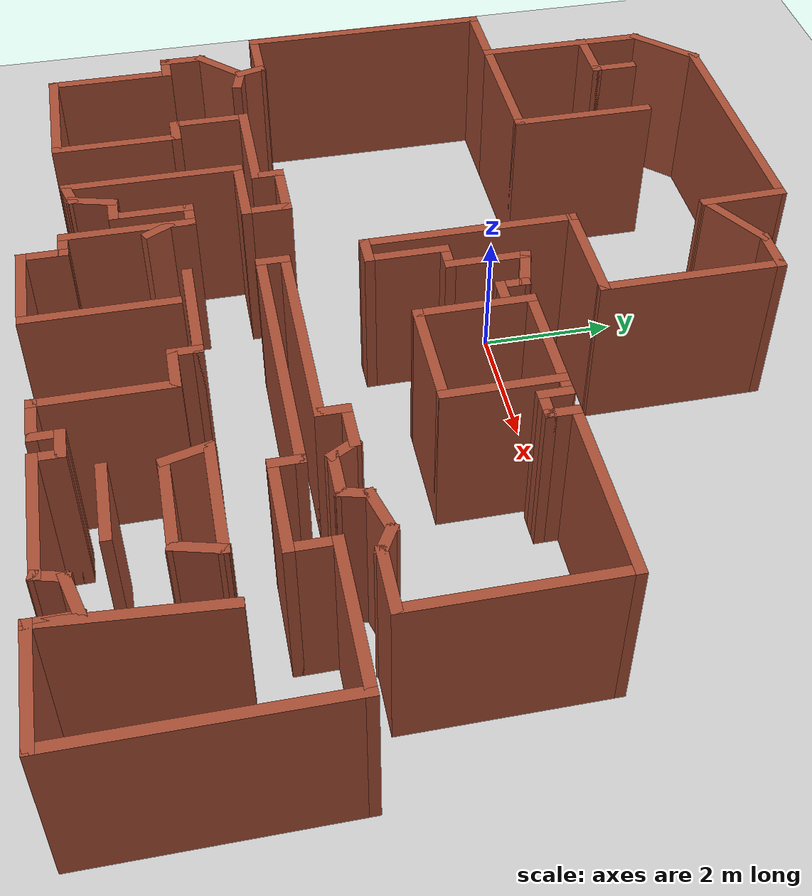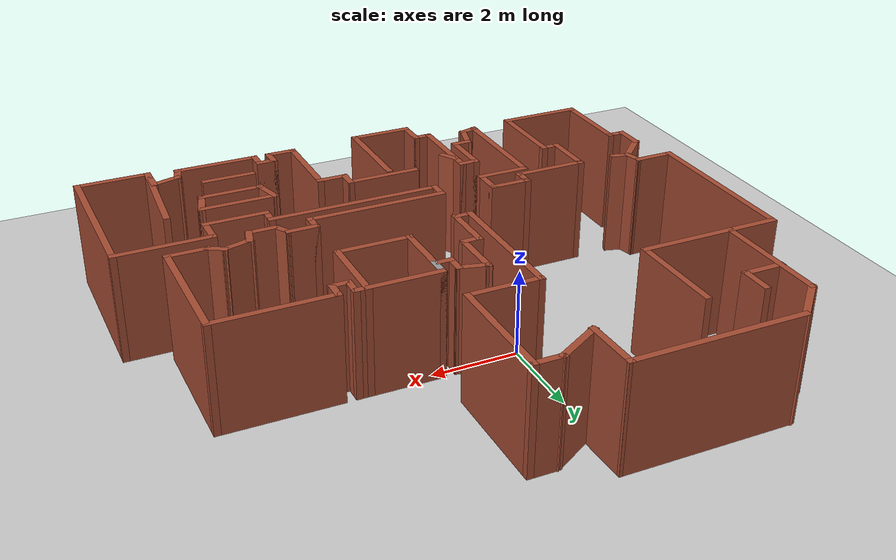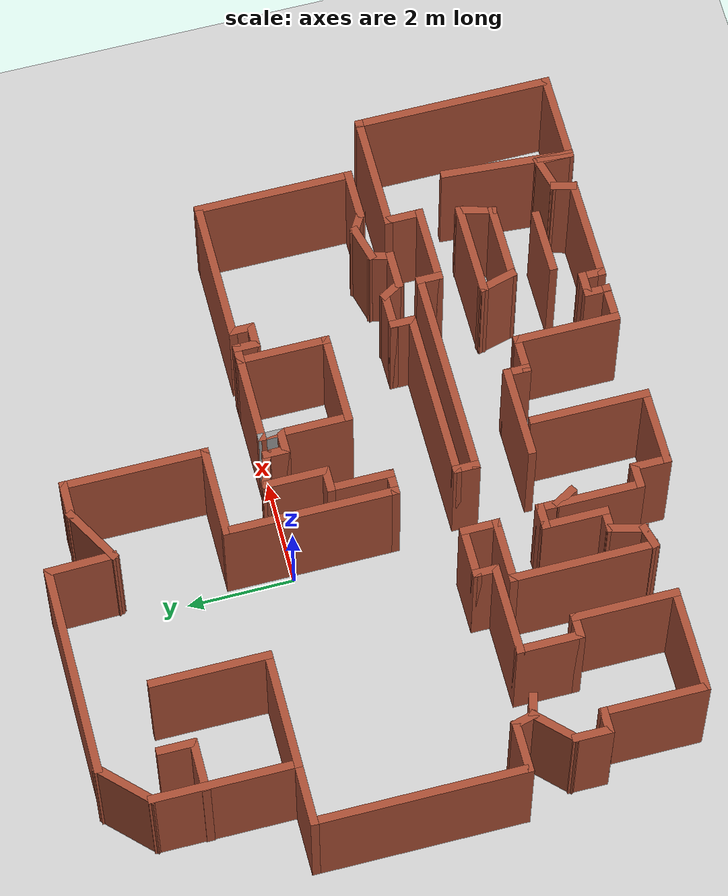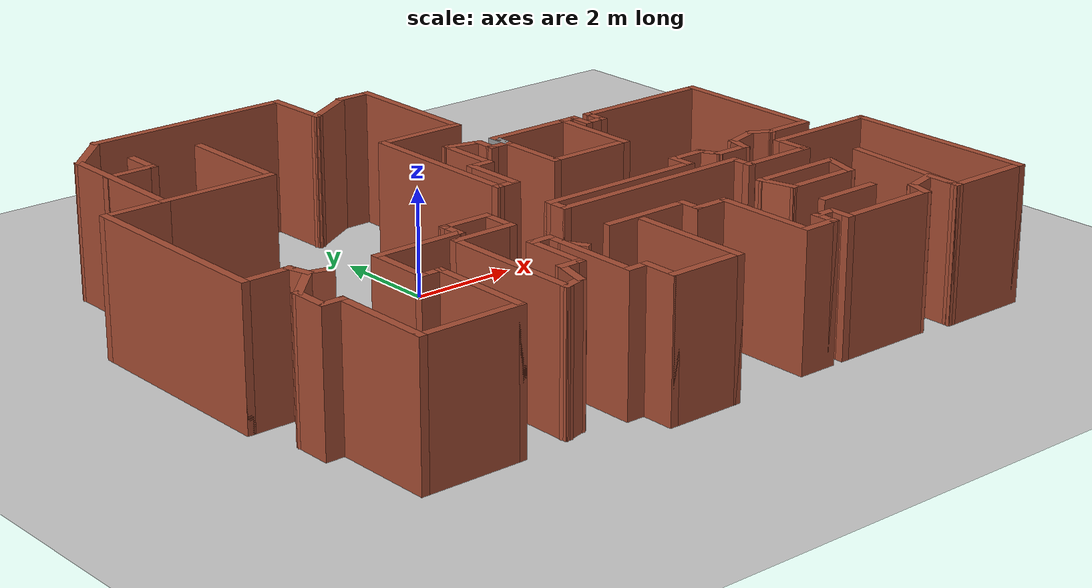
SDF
<sdf version="1.7">
 <world name="default">
  <model name="ground_plane">
   <static>1</static>
   <link name="link">
    <collision name="collision">
     <geometry><plane><normal>0 0 1</normal><size>100 100</size></plane></geometry>
     <surface>
      <contact><collide_bitmask>65535</collide_bitmask></contact>
      <friction><ode><mu>100</mu><mu2>50</mu2></ode></friction>
     </surface>
    </collision>
    <visual name="visual">
     <cast_shadows>0</cast_shadows>
     <geometry><plane><normal>0 0 1</normal><size>100 100</size></plane></geometry>
     <material>
      <script><uri>file://media/materials/scripts/gazebo.material</uri><name>Gazebo/Grey</name></script>
     </material>
    </visual>
   </link>
  </model>
  <model name="map_50">
   <pose>1.03793 -1.19697 0 0 -0 0</pose>
   <link name="Wall_0">
    <collision name="Wall_0_Collision">
     <geometry><box><size>4 0.15 2.5</size></box></geometry>
     <pose>0 0 1.25 0 -0 0</pose>
    </collision>
    <visual name="Wall_0_Visual">
     <pose>0 0 1.25 0 -0 0</pose>
     <geometry><box><size>4 0.15 2.5</size></box></geometry>
     <material>
      <script><uri>file://media/materials/scripts/gazebo.material</uri><name>Gazebo/Bricks</name></script>
      <ambient>1 1 1 1</ambient>
     </material>
     <meta><layer>0</layer></meta>
    </visual>
    <pose>-2.76652 5.59051 0 0 -0 3.14159</pose>
   </link>
   <link name="Wall_1">
    <collision name="Wall_1_Collision">
     <geometry><box><size>1.25 0.15 2.5</size></box></geometry>
     <pose>0 0 1.25 0 -0 0</pose>
    </collision>
    <visual name="Wall_1_Visual">
     <pose>0 0 1.25 0 -0 0</pose>
     <geometry><box><size>1.25 0.15 2.5</size></box></geometry>
     <material>
      <script><uri>file://media/materials/scripts/gazebo.material</uri><name>Gazebo/Bricks</name></script>
      <ambient>1 1 1 1</ambient>
     </material>
     <meta><layer>0</layer></meta>
    </visual>
    <pose>-5.08043 5.2016 0 0 -0 -2.35619</pose>
   </link>
   <link name="Wall_10">
    <collision name="Wall_10_Collision">
     <geometry><box><size>4 0.15 2.5</size></box></geometry>
     <pose>0 0 1.25 0 -0 0</pose>
    </collision>
    <visual name="Wall_10_Visual">
     <pose>0 0 1.25 0 -0 0</pose>
     <geometry><box><size>4 0.15 2.5</size></box></geometry>
     <material>
      <script><uri>file://media/materials/scripts/gazebo.material</uri><name>Gazebo/Bricks</name></script>
      <ambient>1 1 1 1</ambient>
     </material>
     <meta><layer>0</layer></meta>
    </visual>
    <pose>-6.56934 0.28769 0 0 -0 -1.5708</pose>
   </link>
   <link name="Wall_100">
    <collision name="Wall_100_Collision">
     <geometry><box><size>1.33662 0.15 2.5</size></box></geometry>
     <pose>0 0 1.25 0 -0 0</pose>
    </collision>
    <visual name="Wall_100_Visual">
     <pose>0 0 1.25 0 -0 0</pose>
     <geometry><box><size>1.33662 0.15 2.5</size></box></geometry>
     <material>
      <script><uri>file://media/materials/scripts/gazebo.material</uri><name>Gazebo/Bricks</name></script>
      <ambient>1 1 1 1</ambient>
     </material>
     <meta><layer>0</layer></meta>
    </visual>
    <pose>-0.828058 4.99735 0 0 -0 1.59349</pose>
   </link>
   <link name="Wall_102">
    <collision name="Wall_102_Collision">
     <geometry><box><size>1.75 0.15 2.5</size></box></geometry>
     <pose>0 0 1.25 0 -0 0</pose>
    </collision>
    <visual name="Wall_102_Visual">
     <pose>0 0 1.25 0 -0 0</pose>
     <geometry><box><size>1.75 0.15 2.5</size></box></geometry>
     <material>
      <script><uri>file://media/materials/scripts/gazebo.material</uri><name>Gazebo/Bricks</name></script>
      <ambient>1 1 1 1</ambient>
     </material>
     <meta><layer>0</layer></meta>
    </visual>
    <pose>0.767588 0.498903 0 0 -0 -1.5708</pose>
   </link>
   <link name="Wall_103">
    <collision name="Wall_103_Collision">
     <geometry><box><size>1.75 0.15 2.5</size></box></geometry>
     <pose>0 0 1.25 0 -0 0</pose>
    </collision>
    <visual name="Wall_103_Visual">
     <pose>0 0 1.25 0 -0 0</pose>
     <geometry><box><size>1.75 0.15 2.5</size></box></geometry>
     <material>
      <script><uri>file://media/materials/scripts/gazebo.material</uri><name>Gazebo/Bricks</name></script>
      <ambient>1 1 1 1</ambient>
     </material>
     <meta><layer>0</layer></meta>
    </visual>
    <pose>1.56759 -0.301097 0 0 -0 0</pose>
   </link>
   <link name="Wall_105">
    <collision name="Wall_105_Collision">
     <geometry><box><size>1.75 0.15 2.5</size></box></geometry>
     <pose>0 0 1.25 0 -0 0</pose>
    </collision>
    <visual name="Wall_105_Visual">
     <pose>0 0 1.25 0 -0 0</pose>
     <geometry><box><size>1.75 0.15 2.5</size></box></geometry>
     <material>
      <script><uri>file://media/materials/scripts/gazebo.material</uri><name>Gazebo/Bricks</name></script>
      <ambient>1 1 1 1</ambient>
     </material>
     <meta><layer>0</layer></meta>
    </visual>
    <pose>2.36759 0.498903 0 0 -0 1.5708</pose>
   </link>
   <link name="Wall_107">
    <collision name="Wall_107_Collision">
     <geometry><box><size>2.49794 0.15 2.5</size></box></geometry>
     <pose>0 0 1.25 0 -0 0</pose>
    </collision>
    <visual name="Wall_107_Visual">
     <pose>0 0 1.25 0 -0 0</pose>
     <geometry><box><size>2.49794 0.15 2.5</size></box></geometry>
     <material>
      <script><uri>file://media/materials/scripts/gazebo.material</uri><name>Gazebo/Bricks</name></script>
      <ambient>1 1 1 1</ambient>
     </material>
     <meta><layer>0</layer></meta>
    </visual>
    <pose>5.0541 -4.44545 0 0 -0 -1.64306</pose>
   </link>
   <link name="Wall_109">
    <collision name="Wall_109_Collision">
     <geometry><box><size>0.5 0.15 2.5</size></box></geometry>
     <pose>0 0 1.25 0 -0 0</pose>
    </collision>
    <visual name="Wall_109_Visual">
     <pose>0 0 1.25 0 -0 0</pose>
     <geometry><box><size>0.5 0.15 2.5</size></box></geometry>
     <material>
      <script><uri>file://media/materials/scripts/gazebo.material</uri><name>Gazebo/Bricks</name></script>
      <ambient>1 1 1 1</ambient>
     </material>
     <meta><layer>0</layer></meta>
    </visual>
    <pose>-1.73903 -3.63717 0 0 -0 -1.0472</pose>
   </link>
   <link name="Wall_11">
    <collision name="Wall_11_Collision">
     <geometry><box><size>1 0.15 2.5</size></box></geometry>
     <pose>0 0 1.25 0 -0 0</pose>
    </collision>
    <visual name="Wall_11_Visual">
     <pose>0 0 1.25 0 -0 0</pose>
     <geometry><box><size>1 0.15 2.5</size></box></geometry>
     <material>
      <script><uri>file://media/materials/scripts/gazebo.material</uri><name>Gazebo/Bricks</name></script>
      <ambient>1 1 1 1</ambient>
     </material>
     <meta><layer>0</layer></meta>
    </visual>
    <pose>-6.14434 -1.63731 0 0 -0 0</pose>
   </link>
   <link name="Wall_111">
    <collision name="Wall_111_Collision">
     <geometry><box><size>0.5 0.15 2.5</size></box></geometry>
     <pose>0 0 1.25 0 -0 0</pose>
    </collision>
    <visual name="Wall_111_Visual">
     <pose>0 0 1.25 0 -0 0</pose>
     <geometry><box><size>0.5 0.15 2.5</size></box></geometry>
     <material>
      <script><uri>file://media/materials/scripts/gazebo.material</uri><name>Gazebo/Bricks</name></script>
      <ambient>1 1 1 1</ambient>
     </material>
     <meta><layer>0</layer></meta>
    </visual>
    <pose>-5.45971 -2.02068 0 0 -0 -0.261799</pose>
   </link>
   <link name="Wall_113">
    <collision name="Wall_113_Collision">
     <geometry><box><size>1.25 0.15 2.5</size></box></geometry>
     <pose>0 0 1.25 0 -0 0</pose>
    </collision>
    <visual name="Wall_113_Visual">
     <pose>0 0 1.25 0 -0 0</pose>
     <geometry><box><size>1.25 0.15 2.5</size></box></geometry>
     <material>
      <script><uri>file://media/materials/scripts/gazebo.material</uri><name>Gazebo/Bricks</name></script>
      <ambient>1 1 1 1</ambient>
     </material>
     <meta><layer>0</layer></meta>
    </visual>
    <pose>3.33189 -4.68169 0 0 -0 0</pose>
   </link>
   <link name="Wall_115">
    <collision name="Wall_115_Collision">
     <geometry><box><size>0.75 0.15 2.5</size></box></geometry>
     <pose>0 0 1.25 0 -0 0</pose>
    </collision>
    <visual name="Wall_115_Visual">
     <pose>0 0 1.25 0 -0 0</pose>
     <geometry><box><size>0.75 0.15 2.5</size></box></geometry>
     <material>
      <script><uri>file://media/materials/scripts/gazebo.material</uri><name>Gazebo/Bricks</name></script>
      <ambient>1 1 1 1</ambient>
     </material>
     <meta><layer>0</layer></meta>
    </visual>
    <pose>2.754 -3.63468 0 0 -0 -1.309</pose>
   </link>
   <link name="Wall_116">
    <collision name="Wall_116_Collision">
     <geometry><box><size>1.5 0.15 2.5</size></box></geometry>
     <pose>0 0 1.25 0 -0 0</pose>
    </collision>
    <visual name="Wall_116_Visual">
     <pose>0 0 1.25 0 -0 0</pose>
     <geometry><box><size>1.5 0.15 2.5</size></box></geometry>
     <material>
      <script><uri>file://media/materials/scripts/gazebo.material</uri><name>Gazebo/Bricks</name></script>
      <ambient>1 1 1 1</ambient>
     </material>
     <meta><layer>0</layer></meta>
    </visual>
    <pose>3.50665 -3.92445 0 0 -0 0</pose>
   </link>
   <link name="Wall_117">
    <collision name="Wall_117_Collision">
     <geometry><box><size>0.75 0.15 2.5</size></box></geometry>
     <pose>0 0 1.25 0 -0 0</pose>
    </collision>
    <visual name="Wall_117_Visual">
     <pose>0 0 1.25 0 -0 0</pose>
     <geometry><box><size>0.75 0.15 2.5</size></box></geometry>
     <material>
      <script><uri>file://media/materials/scripts/gazebo.material</uri><name>Gazebo/Bricks</name></script>
      <ambient>1 1 1 1</ambient>
     </material>
     <meta><layer>0</layer></meta>
    </visual>
    <pose>4.25929 -3.63468 0 0 -0 1.309</pose>
   </link>
   <link name="Wall_118">
    <collision name="Wall_118_Collision">
     <geometry><box><size>1.81058 0.15 2.5</size></box></geometry>
     <pose>0 0 1.25 0 -0 0</pose>
    </collision>
    <visual name="Wall_118_Visual">
     <pose>0 0 1.25 0 -0 0</pose>
     <geometry><box><size>1.81058 0.15 2.5</size></box></geometry>
     <material>
      <script><uri>file://media/materials/scripts/gazebo.material</uri><name>Gazebo/Bricks</name></script>
      <ambient>1 1 1 1</ambient>
     </material>
     <meta><layer>0</layer></meta>
    </visual>
    <pose>3.50665 -3.3449 0 0 -0 3.14159</pose>
   </link>
   <link name="Wall_12">
    <collision name="Wall_12_Collision">
     <geometry><box><size>0.5 0.15 2.5</size></box></geometry>
     <pose>0 0 1.25 0 -0 0</pose>
    </collision>
    <visual name="Wall_12_Visual">
     <pose>0 0 1.25 0 -0 0</pose>
     <geometry><box><size>0.5 0.15 2.5</size></box></geometry>
     <material>
      <script><uri>file://media/materials/scripts/gazebo.material</uri><name>Gazebo/Bricks</name></script>
      <ambient>1 1 1 1</ambient>
     </material>
     <meta><layer>0</layer></meta>
    </visual>
    <pose>-5.67404 -1.80635 0 0 -0 -1.309</pose>
   </link>
   <link name="Wall_13">
    <collision name="Wall_13_Collision">
     <geometry><box><size>1 0.15 2.5</size></box></geometry>
     <pose>0 0 1.25 0 -0 0</pose>
    </collision>
    <visual name="Wall_13_Visual">
     <pose>0 0 1.25 0 -0 0</pose>
     <geometry><box><size>1 0.15 2.5</size></box></geometry>
     <material>
      <script><uri>file://media/materials/scripts/gazebo.material</uri><name>Gazebo/Bricks</name></script>
      <ambient>1 1 1 1</ambient>
     </material>
     <meta><layer>0</layer></meta>
    </visual>
    <pose>-5.92927 -2.2759 0 0 -0 -2.35619</pose>
   </link>
   <link name="Wall_14">
    <collision name="Wall_14_Collision">
     <geometry><box><size>0.75 0.15 2.5</size></box></geometry>
     <pose>0 0 1.25 0 -0 0</pose>
    </collision>
    <visual name="Wall_14_Visual">
     <pose>0 0 1.25 0 -0 0</pose>
     <geometry><box><size>0.75 0.15 2.5</size></box></geometry>
     <material>
      <script><uri>file://media/materials/scripts/gazebo.material</uri><name>Gazebo/Bricks</name></script>
      <ambient>1 1 1 1</ambient>
     </material>
     <meta><layer>0</layer></meta>
    </visual>
    <pose>-6.22979 -2.87642 0 0 -0 -1.5708</pose>
   </link>
   <link name="Wall_15">
    <collision name="Wall_15_Collision">
     <geometry><box><size>0.5 0.15 2.5</size></box></geometry>
     <pose>0 0 1.25 0 -0 0</pose>
    </collision>
    <visual name="Wall_15_Visual">
     <pose>0 0 1.25 0 -0 0</pose>
     <geometry><box><size>0.5 0.15 2.5</size></box></geometry>
     <material>
      <script><uri>file://media/materials/scripts/gazebo.material</uri><name>Gazebo/Bricks</name></script>
      <ambient>1 1 1 1</ambient>
     </material>
     <meta><layer>0</layer></meta>
    </visual>
    <pose>-6.05479 -3.17643 0 0 -0 0</pose>
   </link>
   <link name="Wall_16">
    <collision name="Wall_16_Collision">
     <geometry><box><size>2 0.15 2.5</size></box></geometry>
     <pose>0 0 1.25 0 -0 0</pose>
    </collision>
    <visual name="Wall_16_Visual">
     <pose>0 0 1.25 0 -0 0</pose>
     <geometry><box><size>2 0.15 2.5</size></box></geometry>
     <material>
      <script><uri>file://media/materials/scripts/gazebo.material</uri><name>Gazebo/Bricks</name></script>
      <ambient>1 1 1 1</ambient>
     </material>
     <meta><layer>0</layer></meta>
    </visual>
    <pose>-5.87979 -4.10142 0 0 -0 -1.5708</pose>
   </link>
   <link name="Wall_17">
    <collision name="Wall_17_Collision">
     <geometry><box><size>2 0.15 2.5</size></box></geometry>
     <pose>0 0 1.25 0 -0 0</pose>
    </collision>
    <visual name="Wall_17_Visual">
     <pose>0 0 1.25 0 -0 0</pose>
     <geometry><box><size>2 0.15 2.5</size></box></geometry>
     <material>
      <script><uri>file://media/materials/scripts/gazebo.material</uri><name>Gazebo/Bricks</name></script>
      <ambient>1 1 1 1</ambient>
     </material>
     <meta><layer>0</layer></meta>
    </visual>
    <pose>-4.95479 -5.02642 0 0 -0 0</pose>
   </link>
   <link name="Wall_18">
    <collision name="Wall_18_Collision">
     <geometry><box><size>2 0.15 2.5</size></box></geometry>
     <pose>0 0 1.25 0 -0 0</pose>
    </collision>
    <visual name="Wall_18_Visual">
     <pose>0 0 1.25 0 -0 0</pose>
     <geometry><box><size>2 0.15 2.5</size></box></geometry>
     <material>
      <script><uri>file://media/materials/scripts/gazebo.material</uri><name>Gazebo/Bricks</name></script>
      <ambient>1 1 1 1</ambient>
     </material>
     <meta><layer>0</layer></meta>
    </visual>
    <pose>-4.02979 -4.10142 0 0 -0 1.5708</pose>
   </link>
   <link name="Wall_19">
    <collision name="Wall_19_Collision">
     <geometry><box><size>0.5 0.15 2.5</size></box></geometry>
     <pose>0 0 1.25 0 -0 0</pose>
    </collision>
    <visual name="Wall_19_Visual">
     <pose>0 0 1.25 0 -0 0</pose>
     <geometry><box><size>0.5 0.15 2.5</size></box></geometry>
     <material>
      <script><uri>file://media/materials/scripts/gazebo.material</uri><name>Gazebo/Bricks</name></script>
      <ambient>1 1 1 1</ambient>
     </material>
     <meta><layer>0</layer></meta>
    </visual>
    <pose>-4.20479 -3.17643 0 0 -0 3.14159</pose>
   </link>
   <link name="Wall_2">
    <collision name="Wall_2_Collision">
     <geometry><box><size>2.75 0.15 2.5</size></box></geometry>
     <pose>0 0 1.25 0 -0 0</pose>
    </collision>
    <visual name="Wall_2_Visual">
     <pose>0 0 1.25 0 -0 0</pose>
     <geometry><box><size>2.75 0.15 2.5</size></box></geometry>
     <material>
      <script><uri>file://media/materials/scripts/gazebo.material</uri><name>Gazebo/Bricks</name></script>
      <ambient>1 1 1 1</ambient>
     </material>
     <meta><layer>0</layer></meta>
    </visual>
    <pose>-5.46934 3.51269 0 0 -0 -1.5708</pose>
   </link>
   <link name="Wall_20">
    <collision name="Wall_20_Collision">
     <geometry><box><size>1.25 0.15 2.5</size></box></geometry>
     <pose>0 0 1.25 0 -0 0</pose>
    </collision>
    <visual name="Wall_20_Visual">
     <pose>0 0 1.25 0 -0 0</pose>
     <geometry><box><size>1.25 0.15 2.5</size></box></geometry>
     <material>
      <script><uri>file://media/materials/scripts/gazebo.material</uri><name>Gazebo/Bricks</name></script>
      <ambient>1 1 1 1</ambient>
     </material>
     <meta><layer>0</layer></meta>
    </visual>
    <pose>-4.37979 -2.62642 0 0 -0 1.5708</pose>
   </link>
   <link name="Wall_21">
    <collision name="Wall_21_Collision">
     <geometry><box><size>1.75 0.15 2.5</size></box></geometry>
     <pose>0 0 1.25 0 -0 0</pose>
    </collision>
    <visual name="Wall_21_Visual">
     <pose>0 0 1.25 0 -0 0</pose>
     <geometry><box><size>1.75 0.15 2.5</size></box></geometry>
     <material>
      <script><uri>file://media/materials/scripts/gazebo.material</uri><name>Gazebo/Bricks</name></script>
      <ambient>1 1 1 1</ambient>
     </material>
     <meta><layer>0</layer></meta>
    </visual>
    <pose>-3.57979 -2.07642 0 0 -0 0</pose>
   </link>
   <link name="Wall_22">
    <collision name="Wall_22_Collision">
     <geometry><box><size>0.5 0.15 2.5</size></box></geometry>
     <pose>0 0 1.25 0 -0 0</pose>
    </collision>
    <visual name="Wall_22_Visual">
     <pose>0 0 1.25 0 -0 0</pose>
     <geometry><box><size>0.5 0.15 2.5</size></box></geometry>
     <material>
      <script><uri>file://media/materials/scripts/gazebo.material</uri><name>Gazebo/Bricks</name></script>
      <ambient>1 1 1 1</ambient>
     </material>
     <meta><layer>0</layer></meta>
    </visual>
    <pose>-2.77979 -1.90142 0 0 -0 1.5708</pose>
   </link>
   <link name="Wall_23">
    <collision name="Wall_23_Collision">
     <geometry><box><size>1 0.15 2.5</size></box></geometry>
     <pose>0 0 1.25 0 -0 0</pose>
    </collision>
    <visual name="Wall_23_Visual">
     <pose>0 0 1.25 0 -0 0</pose>
     <geometry><box><size>1 0.15 2.5</size></box></geometry>
     <material>
      <script><uri>file://media/materials/scripts/gazebo.material</uri><name>Gazebo/Bricks</name></script>
      <ambient>1 1 1 1</ambient>
     </material>
     <meta><layer>0</layer></meta>
    </visual>
    <pose>-2.35479 -1.72642 0 0 -0 0</pose>
   </link>
   <link name="Wall_24">
    <collision name="Wall_24_Collision">
     <geometry><box><size>0.75 0.15 2.5</size></box></geometry>
     <pose>0 0 1.25 0 -0 0</pose>
    </collision>
    <visual name="Wall_24_Visual">
     <pose>0 0 1.25 0 -0 0</pose>
     <geometry><box><size>0.75 0.15 2.5</size></box></geometry>
     <material>
      <script><uri>file://media/materials/scripts/gazebo.material</uri><name>Gazebo/Bricks</name></script>
      <ambient>1 1 1 1</ambient>
     </material>
     <meta><layer>0</layer></meta>
    </visual>
    <pose>-1.92979 -2.02643 0 0 -0 -1.5708</pose>
   </link>
   <link name="Wall_25">
    <collision name="Wall_25_Collision">
     <geometry><box><size>1.25 0.15 2.5</size></box></geometry>
     <pose>0 0 1.25 0 -0 0</pose>
    </collision>
    <visual name="Wall_25_Visual">
     <pose>0 0 1.25 0 -0 0</pose>
     <geometry><box><size>1.25 0.15 2.5</size></box></geometry>
     <material>
      <script><uri>file://media/materials/scripts/gazebo.material</uri><name>Gazebo/Bricks</name></script>
      <ambient>1 1 1 1</ambient>
     </material>
     <meta><layer>0</layer></meta>
    </visual>
    <pose>-2.47979 -2.32642 0 0 -0 3.14159</pose>
   </link>
   <link name="Wall_26">
    <collision name="Wall_26_Collision">
     <geometry><box><size>2.75 0.15 2.5</size></box></geometry>
     <pose>0 0 1.25 0 -0 0</pose>
    </collision>
    <visual name="Wall_26_Visual">
     <pose>0 0 1.25 0 -0 0</pose>
     <geometry><box><size>2.75 0.15 2.5</size></box></geometry>
     <material>
      <script><uri>file://media/materials/scripts/gazebo.material</uri><name>Gazebo/Bricks</name></script>
      <ambient>1 1 1 1</ambient>
     </material>
     <meta><layer>0</layer></meta>
    </visual>
    <pose>-3.02979 -3.62642 0 0 -0 -1.5708</pose>
   </link>
   <link name="Wall_27">
    <collision name="Wall_27_Collision">
     <geometry><box><size>0.5 0.15 2.5</size></box></geometry>
     <pose>0 0 1.25 0 -0 0</pose>
    </collision>
    <visual name="Wall_27_Visual">
     <pose>0 0 1.25 0 -0 0</pose>
     <geometry><box><size>0.5 0.15 2.5</size></box></geometry>
     <material>
      <script><uri>file://media/materials/scripts/gazebo.material</uri><name>Gazebo/Bricks</name></script>
      <ambient>1 1 1 1</ambient>
     </material>
     <meta><layer>0</layer></meta>
    </visual>
    <pose>-2.86076 -4.88113 0 0 -0 0.261799</pose>
   </link>
   <link name="Wall_28">
    <collision name="Wall_28_Collision">
     <geometry><box><size>0.75 0.15 2.5</size></box></geometry>
     <pose>0 0 1.25 0 -0 0</pose>
    </collision>
    <visual name="Wall_28_Visual">
     <pose>0 0 1.25 0 -0 0</pose>
     <geometry><box><size>0.75 0.15 2.5</size></box></geometry>
     <material>
      <script><uri>file://media/materials/scripts/gazebo.material</uri><name>Gazebo/Bricks</name></script>
      <ambient>1 1 1 1</ambient>
     </material>
     <meta><layer>0</layer></meta>
    </visual>
    <pose>-2.61407 -4.54606 0 0 -0 1.309</pose>
   </link>
   <link name="Wall_3">
    <collision name="Wall_3_Collision">
     <geometry><box><size>2.25 0.15 2.5</size></box></geometry>
     <pose>0 0 1.25 0 -0 0</pose>
    </collision>
    <visual name="Wall_3_Visual">
     <pose>0 0 1.25 0 -0 0</pose>
     <geometry><box><size>2.25 0.15 2.5</size></box></geometry>
     <material>
      <script><uri>file://media/materials/scripts/gazebo.material</uri><name>Gazebo/Bricks</name></script>
      <ambient>1 1 1 1</ambient>
     </material>
     <meta><layer>0</layer></meta>
    </visual>
    <pose>-4.41934 2.21269 0 0 -0 0</pose>
   </link>
   <link name="Wall_33">
    <collision name="Wall_33_Collision">
     <geometry><box><size>0.5 0.15 2.5</size></box></geometry>
     <pose>0 0 1.25 0 -0 0</pose>
    </collision>
    <visual name="Wall_33_Visual">
     <pose>0 0 1.25 0 -0 0</pose>
     <geometry><box><size>0.5 0.15 2.5</size></box></geometry>
     <material>
      <script><uri>file://media/materials/scripts/gazebo.material</uri><name>Gazebo/Bricks</name></script>
      <ambient>1 1 1 1</ambient>
     </material>
     <meta><layer>0</layer></meta>
    </visual>
    <pose>-2.36143 -4.25628 0 0 -0 0</pose>
   </link>
   <link name="Wall_34">
    <collision name="Wall_34_Collision">
     <geometry><box><size>1.25 0.15 2.5</size></box></geometry>
     <pose>0 0 1.25 0 -0 0</pose>
    </collision>
    <visual name="Wall_34_Visual">
     <pose>0 0 1.25 0 -0 0</pose>
     <geometry><box><size>1.25 0.15 2.5</size></box></geometry>
     <material>
      <script><uri>file://media/materials/scripts/gazebo.material</uri><name>Gazebo/Bricks</name></script>
      <ambient>1 1 1 1</ambient>
     </material>
     <meta><layer>0</layer></meta>
    </visual>
    <pose>-2.18643 -3.70628 0 0 -0 1.5708</pose>
   </link>
   <link name="Wall_35">
    <collision name="Wall_35_Collision">
     <geometry><box><size>0.5 0.15 2.5</size></box></geometry>
     <pose>0 0 1.25 0 -0 0</pose>
    </collision>
    <visual name="Wall_35_Visual">
     <pose>0 0 1.25 0 -0 0</pose>
     <geometry><box><size>0.5 0.15 2.5</size></box></geometry>
     <material>
      <script><uri>file://media/materials/scripts/gazebo.material</uri><name>Gazebo/Bricks</name></script>
      <ambient>1 1 1 1</ambient>
     </material>
     <meta><layer>0</layer></meta>
    </visual>
    <pose>-2.01143 -3.15628 0 0 -0 0</pose>
   </link>
   <link name="Wall_36">
    <collision name="Wall_36_Collision">
     <geometry><box><size>2 0.15 2.5</size></box></geometry>
     <pose>0 0 1.25 0 -0 0</pose>
    </collision>
    <visual name="Wall_36_Visual">
     <pose>0 0 1.25 0 -0 0</pose>
     <geometry><box><size>2 0.15 2.5</size></box></geometry>
     <material>
      <script><uri>file://media/materials/scripts/gazebo.material</uri><name>Gazebo/Bricks</name></script>
      <ambient>1 1 1 1</ambient>
     </material>
     <meta><layer>0</layer></meta>
    </visual>
    <pose>-1.83643 -4.08128 0 0 -0 -1.5708</pose>
   </link>
   <link name="Wall_37">
    <collision name="Wall_37_Collision">
     <geometry><box><size>0.5 0.15 2.5</size></box></geometry>
     <pose>0 0 1.25 0 -0 0</pose>
    </collision>
    <visual name="Wall_37_Visual">
     <pose>0 0 1.25 0 -0 0</pose>
     <geometry><box><size>0.5 0.15 2.5</size></box></geometry>
     <material>
      <script><uri>file://media/materials/scripts/gazebo.material</uri><name>Gazebo/Bricks</name></script>
      <ambient>1 1 1 1</ambient>
     </material>
     <meta><layer>0</layer></meta>
    </visual>
    <pose>-1.66143 -5.00628 0 0 -0 0</pose>
   </link>
   <link name="Wall_38">
    <collision name="Wall_38_Collision">
     <geometry><box><size>0.75 0.15 2.5</size></box></geometry>
     <pose>0 0 1.25 0 -0 0</pose>
    </collision>
    <visual name="Wall_38_Visual">
     <pose>0 0 1.25 0 -0 0</pose>
     <geometry><box><size>0.75 0.15 2.5</size></box></geometry>
     <material>
      <script><uri>file://media/materials/scripts/gazebo.material</uri><name>Gazebo/Bricks</name></script>
      <ambient>1 1 1 1</ambient>
     </material>
     <meta><layer>0</layer></meta>
    </visual>
    <pose>-1.48643 -5.30628 0 0 -0 -1.5708</pose>
   </link>
   <link name="Wall_4">
    <collision name="Wall_4_Collision">
     <geometry><box><size>2.25 0.15 2.5</size></box></geometry>
     <pose>0 0 1.25 0 -0 0</pose>
    </collision>
    <visual name="Wall_4_Visual">
     <pose>0 0 1.25 0 -0 0</pose>
     <geometry><box><size>2.25 0.15 2.5</size></box></geometry>
     <material>
      <script><uri>file://media/materials/scripts/gazebo.material</uri><name>Gazebo/Bricks</name></script>
      <ambient>1 1 1 1</ambient>
     </material>
     <meta><layer>0</layer></meta>
    </visual>
    <pose>-3.36934 3.26269 0 0 -0 1.5708</pose>
   </link>
   <link name="Wall_41">
    <collision name="Wall_41_Collision">
     <geometry><box><size>1.5 0.15 2.5</size></box></geometry>
     <pose>0 0 1.25 0 -0 0</pose>
    </collision>
    <visual name="Wall_41_Visual">
     <pose>0 0 1.25 0 -0 0</pose>
     <geometry><box><size>1.5 0.15 2.5</size></box></geometry>
     <material>
      <script><uri>file://media/materials/scripts/gazebo.material</uri><name>Gazebo/Bricks</name></script>
      <ambient>1 1 1 1</ambient>
     </material>
     <meta><layer>0</layer></meta>
    </visual>
    <pose>-0.811426 -5.60628 0 0 -0 0</pose>
   </link>
   <link name="Wall_42">
    <collision name="Wall_42_Collision">
     <geometry><box><size>2.25 0.15 2.5</size></box></geometry>
     <pose>0 0 1.25 0 -0 0</pose>
    </collision>
    <visual name="Wall_42_Visual">
     <pose>0 0 1.25 0 -0 0</pose>
     <geometry><box><size>2.25 0.15 2.5</size></box></geometry>
     <material>
      <script><uri>file://media/materials/scripts/gazebo.material</uri><name>Gazebo/Bricks</name></script>
      <ambient>1 1 1 1</ambient>
     </material>
     <meta><layer>0</layer></meta>
    </visual>
    <pose>-0.136426 -4.55628 0 0 -0 1.5708</pose>
   </link>
   <link name="Wall_44">
    <collision name="Wall_44_Collision">
     <geometry><box><size>1.75 0.15 2.5</size></box></geometry>
     <pose>0 0 1.25 0 -0 0</pose>
    </collision>
    <visual name="Wall_44_Visual">
     <pose>0 0 1.25 0 -0 0</pose>
     <geometry><box><size>1.75 0.15 2.5</size></box></geometry>
     <material>
      <script><uri>file://media/materials/scripts/gazebo.material</uri><name>Gazebo/Bricks</name></script>
      <ambient>1 1 1 1</ambient>
     </material>
     <meta><layer>0</layer></meta>
    </visual>
    <pose>0.099195 -3.30972 0 0 -0 0</pose>
   </link>
   <link name="Wall_45">
    <collision name="Wall_45_Collision">
     <geometry><box><size>0.5 0.15 2.5</size></box></geometry>
     <pose>0 0 1.25 0 -0 0</pose>
    </collision>
    <visual name="Wall_45_Visual">
     <pose>0 0 1.25 0 -0 0</pose>
     <geometry><box><size>0.5 0.15 2.5</size></box></geometry>
     <material>
      <script><uri>file://media/materials/scripts/gazebo.material</uri><name>Gazebo/Bricks</name></script>
      <ambient>1 1 1 1</ambient>
     </material>
     <meta><layer>0</layer></meta>
    </visual>
    <pose>0.899195 -3.48472 0 0 -0 -1.5708</pose>
   </link>
   <link name="Wall_46">
    <collision name="Wall_46_Collision">
     <geometry><box><size>0.75 0.15 2.5</size></box></geometry>
     <pose>0 0 1.25 0 -0 0</pose>
    </collision>
    <visual name="Wall_46_Visual">
     <pose>0 0 1.25 0 -0 0</pose>
     <geometry><box><size>0.75 0.15 2.5</size></box></geometry>
     <material>
      <script><uri>file://media/materials/scripts/gazebo.material</uri><name>Gazebo/Bricks</name></script>
      <ambient>1 1 1 1</ambient>
     </material>
     <meta><layer>0</layer></meta>
    </visual>
    <pose>1.1992 -3.65972 0 0 -0 0</pose>
   </link>
   <link name="Wall_47">
    <collision name="Wall_47_Collision">
     <geometry><box><size>2 0.15 2.5</size></box></geometry>
     <pose>0 0 1.25 0 -0 0</pose>
    </collision>
    <visual name="Wall_47_Visual">
     <pose>0 0 1.25 0 -0 0</pose>
     <geometry><box><size>2 0.15 2.5</size></box></geometry>
     <material>
      <script><uri>file://media/materials/scripts/gazebo.material</uri><name>Gazebo/Bricks</name></script>
      <ambient>1 1 1 1</ambient>
     </material>
     <meta><layer>0</layer></meta>
    </visual>
    <pose>1.4992 -4.58472 0 0 -0 -1.5708</pose>
   </link>
   <link name="Wall_48">
    <collision name="Wall_48_Collision">
     <geometry><box><size>0.75 0.15 2.5</size></box></geometry>
     <pose>0 0 1.25 0 -0 0</pose>
    </collision>
    <visual name="Wall_48_Visual">
     <pose>0 0 1.25 0 -0 0</pose>
     <geometry><box><size>0.75 0.15 2.5</size></box></geometry>
     <material>
      <script><uri>file://media/materials/scripts/gazebo.material</uri><name>Gazebo/Bricks</name></script>
      <ambient>1 1 1 1</ambient>
     </material>
     <meta><layer>0</layer></meta>
    </visual>
    <pose>1.7992 -5.50972 0 0 -0 0</pose>
   </link>
   <link name="Wall_49">
    <collision name="Wall_49_Collision">
     <geometry><box><size>0.5 0.15 2.5</size></box></geometry>
     <pose>0 0 1.25 0 -0 0</pose>
    </collision>
    <visual name="Wall_49_Visual">
     <pose>0 0 1.25 0 -0 0</pose>
     <geometry><box><size>0.5 0.15 2.5</size></box></geometry>
     <material>
      <script><uri>file://media/materials/scripts/gazebo.material</uri><name>Gazebo/Bricks</name></script>
      <ambient>1 1 1 1</ambient>
     </material>
     <meta><layer>0</layer></meta>
    </visual>
    <pose>2.09919 -5.33472 0 0 -0 1.5708</pose>
   </link>
   <link name="Wall_50">
    <collision name="Wall_50_Collision">
     <geometry><box><size>0.5 0.15 2.5</size></box></geometry>
     <pose>0 0 1.25 0 -0 0</pose>
    </collision>
    <visual name="Wall_50_Visual">
     <pose>0 0 1.25 0 -0 0</pose>
     <geometry><box><size>0.5 0.15 2.5</size></box></geometry>
     <material>
      <script><uri>file://media/materials/scripts/gazebo.material</uri><name>Gazebo/Bricks</name></script>
      <ambient>1 1 1 1</ambient>
     </material>
     <meta><layer>0</layer></meta>
    </visual>
    <pose>2.2742 -5.15972 0 0 -0 0</pose>
   </link>
   <link name="Wall_51">
    <collision name="Wall_51_Collision">
     <geometry><box><size>0.5 0.15 2.5</size></box></geometry>
     <pose>0 0 1.25 0 -0 0</pose>
    </collision>
    <visual name="Wall_51_Visual">
     <pose>0 0 1.25 0 -0 0</pose>
     <geometry><box><size>0.5 0.15 2.5</size></box></geometry>
     <material>
      <script><uri>file://media/materials/scripts/gazebo.material</uri><name>Gazebo/Bricks</name></script>
      <ambient>1 1 1 1</ambient>
     </material>
     <meta><layer>0</layer></meta>
    </visual>
    <pose>2.4492 -5.33472 0 0 -0 -1.5708</pose>
   </link>
   <link name="Wall_52">
    <collision name="Wall_52_Collision">
     <geometry><box><size>2 0.15 2.5</size></box></geometry>
     <pose>0 0 1.25 0 -0 0</pose>
    </collision>
    <visual name="Wall_52_Visual">
     <pose>0 0 1.25 0 -0 0</pose>
     <geometry><box><size>2 0.15 2.5</size></box></geometry>
     <material>
      <script><uri>file://media/materials/scripts/gazebo.material</uri><name>Gazebo/Bricks</name></script>
      <ambient>1 1 1 1</ambient>
     </material>
     <meta><layer>0</layer></meta>
    </visual>
    <pose>3.37419 -5.50972 0 0 -0 0</pose>
   </link>
   <link name="Wall_53">
    <collision name="Wall_53_Collision">
     <geometry><box><size>0.5 0.15 2.5</size></box></geometry>
     <pose>0 0 1.25 0 -0 0</pose>
    </collision>
    <visual name="Wall_53_Visual">
     <pose>0 0 1.25 0 -0 0</pose>
     <geometry><box><size>0.5 0.15 2.5</size></box></geometry>
     <material>
      <script><uri>file://media/materials/scripts/gazebo.material</uri><name>Gazebo/Bricks</name></script>
      <ambient>1 1 1 1</ambient>
     </material>
     <meta><layer>0</layer></meta>
    </visual>
    <pose>4.34449 -5.34068 0 0 -0 1.309</pose>
   </link>
   <link name="Wall_54">
    <collision name="Wall_54_Collision">
     <geometry><box><size>0.75 0.15 2.5</size></box></geometry>
     <pose>0 0 1.25 0 -0 0</pose>
    </collision>
    <visual name="Wall_54_Visual">
     <pose>0 0 1.25 0 -0 0</pose>
     <geometry><box><size>0.75 0.15 2.5</size></box></geometry>
     <material>
      <script><uri>file://media/materials/scripts/gazebo.material</uri><name>Gazebo/Bricks</name></script>
      <ambient>1 1 1 1</ambient>
     </material>
     <meta><layer>0</layer></meta>
    </visual>
    <pose>4.67956 -5.094 0 0 -0 0.261799</pose>
   </link>
   <link name="Wall_55">
    <collision name="Wall_55_Collision">
     <geometry><box><size>0.75 0.15 2.5</size></box></geometry>
     <pose>0 0 1.25 0 -0 0</pose>
    </collision>
    <visual name="Wall_55_Visual">
     <pose>0 0 1.25 0 -0 0</pose>
     <geometry><box><size>0.75 0.15 2.5</size></box></geometry>
     <material>
      <script><uri>file://media/materials/scripts/gazebo.material</uri><name>Gazebo/Bricks</name></script>
      <ambient>1 1 1 1</ambient>
     </material>
     <meta><layer>0</layer></meta>
    </visual>
    <pose>4.96934 -5.31635 0 0 -0 -1.5708</pose>
   </link>
   <link name="Wall_56">
    <collision name="Wall_56_Collision">
     <geometry><box><size>1.75 0.15 2.5</size></box></geometry>
     <pose>0 0 1.25 0 -0 0</pose>
    </collision>
    <visual name="Wall_56_Visual">
     <pose>0 0 1.25 0 -0 0</pose>
     <geometry><box><size>1.75 0.15 2.5</size></box></geometry>
     <material>
      <script><uri>file://media/materials/scripts/gazebo.material</uri><name>Gazebo/Bricks</name></script>
      <ambient>1 1 1 1</ambient>
     </material>
     <meta><layer>0</layer></meta>
    </visual>
    <pose>5.76934 -5.61635 0 0 -0 0</pose>
   </link>
   <link name="Wall_57">
    <collision name="Wall_57_Collision">
     <geometry><box><size>3.75 0.15 2.5</size></box></geometry>
     <pose>0 0 1.25 0 -0 0</pose>
    </collision>
    <visual name="Wall_57_Visual">
     <pose>0 0 1.25 0 -0 0</pose>
     <geometry><box><size>3.75 0.15 2.5</size></box></geometry>
     <material>
      <script><uri>file://media/materials/scripts/gazebo.material</uri><name>Gazebo/Bricks</name></script>
      <ambient>1 1 1 1</ambient>
     </material>
     <meta><layer>0</layer></meta>
    </visual>
    <pose>6.56934 -3.81635 0 0 -0 1.5708</pose>
   </link>
   <link name="Wall_58">
    <collision name="Wall_58_Collision">
     <geometry><box><size>2.25 0.15 2.5</size></box></geometry>
     <pose>0 0 1.25 0 -0 0</pose>
    </collision>
    <visual name="Wall_58_Visual">
     <pose>0 0 1.25 0 -0 0</pose>
     <geometry><box><size>2.25 0.15 2.5</size></box></geometry>
     <material>
      <script><uri>file://media/materials/scripts/gazebo.material</uri><name>Gazebo/Bricks</name></script>
      <ambient>1 1 1 1</ambient>
     </material>
     <meta><layer>0</layer></meta>
    </visual>
    <pose>5.51934 -2.01635 0 0 -0 3.14159</pose>
   </link>
   <link name="Wall_59">
    <collision name="Wall_59_Collision">
     <geometry><box><size>0.75 0.15 2.5</size></box></geometry>
     <pose>0 0 1.25 0 -0 0</pose>
    </collision>
    <visual name="Wall_59_Visual">
     <pose>0 0 1.25 0 -0 0</pose>
     <geometry><box><size>0.75 0.15 2.5</size></box></geometry>
     <material>
      <script><uri>file://media/materials/scripts/gazebo.material</uri><name>Gazebo/Bricks</name></script>
      <ambient>1 1 1 1</ambient>
     </material>
     <meta><layer>0</layer></meta>
    </visual>
    <pose>4.46934 -2.31635 0 0 -0 -1.5708</pose>
   </link>
   <link name="Wall_6">
    <collision name="Wall_6_Collision">
     <geometry><box><size>1 0.15 2.5</size></box></geometry>
     <pose>0 0 1.25 0 -0 0</pose>
    </collision>
    <visual name="Wall_6_Visual">
     <pose>0 0 1.25 0 -0 0</pose>
     <geometry><box><size>1 0.15 2.5</size></box></geometry>
     <material>
      <script><uri>file://media/materials/scripts/gazebo.material</uri><name>Gazebo/Bricks</name></script>
      <ambient>1 1 1 1</ambient>
     </material>
     <meta><layer>0</layer></meta>
    </visual>
    <pose>-5.06012 3.86675 0 0 -0 0</pose>
   </link>
   <link name="Wall_60">
    <collision name="Wall_60_Collision">
     <geometry><box><size>1.5 0.15 2.5</size></box></geometry>
     <pose>0 0 1.25 0 -0 0</pose>
    </collision>
    <visual name="Wall_60_Visual">
     <pose>0 0 1.25 0 -0 0</pose>
     <geometry><box><size>1.5 0.15 2.5</size></box></geometry>
     <material>
      <script><uri>file://media/materials/scripts/gazebo.material</uri><name>Gazebo/Bricks</name></script>
      <ambient>1 1 1 1</ambient>
     </material>
     <meta><layer>0</layer></meta>
    </visual>
    <pose>3.79434 -2.61635 0 0 -0 3.14159</pose>
   </link>
   <link name="Wall_61">
    <collision name="Wall_61_Collision">
     <geometry><box><size>0.5 0.15 2.5</size></box></geometry>
     <pose>0 0 1.25 0 -0 0</pose>
    </collision>
    <visual name="Wall_61_Visual">
     <pose>0 0 1.25 0 -0 0</pose>
     <geometry><box><size>0.5 0.15 2.5</size></box></geometry>
     <material>
      <script><uri>file://media/materials/scripts/gazebo.material</uri><name>Gazebo/Bricks</name></script>
      <ambient>1 1 1 1</ambient>
     </material>
     <meta><layer>0</layer></meta>
    </visual>
    <pose>3.11934 -2.44135 0 0 -0 1.5708</pose>
   </link>
   <link name="Wall_62">
    <collision name="Wall_62_Collision">
     <geometry><box><size>4 0.15 2.5</size></box></geometry>
     <pose>0 0 1.25 0 -0 0</pose>
    </collision>
    <visual name="Wall_62_Visual">
     <pose>0 0 1.25 0 -0 0</pose>
     <geometry><box><size>4 0.15 2.5</size></box></geometry>
     <material>
      <script><uri>file://media/materials/scripts/gazebo.material</uri><name>Gazebo/Bricks</name></script>
      <ambient>1 1 1 1</ambient>
     </material>
     <meta><layer>0</layer></meta>
    </visual>
    <pose>1.19434 -2.26635 0 0 -0 3.14159</pose>
   </link>
   <link name="Wall_63">
    <collision name="Wall_63_Collision">
     <geometry><box><size>0.5 0.15 2.5</size></box></geometry>
     <pose>0 0 1.25 0 -0 0</pose>
    </collision>
    <visual name="Wall_63_Visual">
     <pose>0 0 1.25 0 -0 0</pose>
     <geometry><box><size>0.5 0.15 2.5</size></box></geometry>
     <material>
      <script><uri>file://media/materials/scripts/gazebo.material</uri><name>Gazebo/Bricks</name></script>
      <ambient>1 1 1 1</ambient>
     </material>
     <meta><layer>0</layer></meta>
    </visual>
    <pose>-0.730663 -2.09135 0 0 -0 1.5708</pose>
   </link>
   <link name="Wall_7">
    <collision name="Wall_7_Collision">
     <geometry><box><size>0.75 0.15 2.5</size></box></geometry>
     <pose>0 0 1.25 0 -0 0</pose>
    </collision>
    <visual name="Wall_7_Visual">
     <pose>0 0 1.25 0 -0 0</pose>
     <geometry><box><size>0.75 0.15 2.5</size></box></geometry>
     <material>
      <script><uri>file://media/materials/scripts/gazebo.material</uri><name>Gazebo/Bricks</name></script>
      <ambient>1 1 1 1</ambient>
     </material>
     <meta><layer>0</layer></meta>
    </visual>
    <pose>-4.63512 4.16675 0 0 -0 1.5708</pose>
   </link>
   <link name="Wall_70">
    <collision name="Wall_70_Collision">
     <geometry><box><size>3.25 0.15 2.5</size></box></geometry>
     <pose>0 0 1.25 0 -0 0</pose>
    </collision>
    <visual name="Wall_70_Visual">
     <pose>0 0 1.25 0 -0 0</pose>
     <geometry><box><size>3.25 0.15 2.5</size></box></geometry>
     <material>
      <script><uri>file://media/materials/scripts/gazebo.material</uri><name>Gazebo/Bricks</name></script>
      <ambient>1 1 1 1</ambient>
     </material>
     <meta><layer>0</layer></meta>
    </visual>
    <pose>0.819337 -1.91635 0 0 -0 0</pose>
   </link>
   <link name="Wall_71">
    <collision name="Wall_71_Collision">
     <geometry><box><size>0.5 0.15 2.5</size></box></geometry>
     <pose>0 0 1.25 0 -0 0</pose>
    </collision>
    <visual name="Wall_71_Visual">
     <pose>0 0 1.25 0 -0 0</pose>
     <geometry><box><size>0.5 0.15 2.5</size></box></geometry>
     <material>
      <script><uri>file://media/materials/scripts/gazebo.material</uri><name>Gazebo/Bricks</name></script>
      <ambient>1 1 1 1</ambient>
     </material>
     <meta><layer>0</layer></meta>
    </visual>
    <pose>2.36934 -1.74135 0 0 -0 1.5708</pose>
   </link>
   <link name="Wall_74">
    <collision name="Wall_74_Collision">
     <geometry><box><size>0.75 0.15 2.5</size></box></geometry>
     <pose>0 0 1.25 0 -0 0</pose>
    </collision>
    <visual name="Wall_74_Visual">
     <pose>0 0 1.25 0 -0 0</pose>
     <geometry><box><size>0.75 0.15 2.5</size></box></geometry>
     <material>
      <script><uri>file://media/materials/scripts/gazebo.material</uri><name>Gazebo/Bricks</name></script>
      <ambient>1 1 1 1</ambient>
     </material>
     <meta><layer>0</layer></meta>
    </visual>
    <pose>2.66934 -1.56635 0 0 -0 0</pose>
   </link>
   <link name="Wall_75">
    <collision name="Wall_75_Collision">
     <geometry><box><size>0.5 0.15 2.5</size></box></geometry>
     <pose>0 0 1.25 0 -0 0</pose>
    </collision>
    <visual name="Wall_75_Visual">
     <pose>0 0 1.25 0 -0 0</pose>
     <geometry><box><size>0.5 0.15 2.5</size></box></geometry>
     <material>
      <script><uri>file://media/materials/scripts/gazebo.material</uri><name>Gazebo/Bricks</name></script>
      <ambient>1 1 1 1</ambient>
     </material>
     <meta><layer>0</layer></meta>
    </visual>
    <pose>3.05684 -1.71791 0 0 -0 -1.0472</pose>
   </link>
   <link name="Wall_76">
    <collision name="Wall_76_Collision">
     <geometry><box><size>0.75 0.15 2.5</size></box></geometry>
     <pose>0 0 1.25 0 -0 0</pose>
    </collision>
    <visual name="Wall_76_Visual">
     <pose>0 0 1.25 0 -0 0</pose>
     <geometry><box><size>0.75 0.15 2.5</size></box></geometry>
     <material>
      <script><uri>file://media/materials/scripts/gazebo.material</uri><name>Gazebo/Bricks</name></script>
      <ambient>1 1 1 1</ambient>
     </material>
     <meta><layer>0</layer></meta>
    </visual>
    <pose>3.44434 -1.86946 0 0 -0 0</pose>
   </link>
   <link name="Wall_77">
    <collision name="Wall_77_Collision">
     <geometry><box><size>0.5 0.15 2.5</size></box></geometry>
     <pose>0 0 1.25 0 -0 0</pose>
    </collision>
    <visual name="Wall_77_Visual">
     <pose>0 0 1.25 0 -0 0</pose>
     <geometry><box><size>0.5 0.15 2.5</size></box></geometry>
     <material>
      <script><uri>file://media/materials/scripts/gazebo.material</uri><name>Gazebo/Bricks</name></script>
      <ambient>1 1 1 1</ambient>
     </material>
     <meta><layer>0</layer></meta>
    </visual>
    <pose>3.78963 -1.70043 0 0 -0 1.309</pose>
   </link>
   <link name="Wall_78">
    <collision name="Wall_78_Collision">
     <geometry><box><size>0.75 0.15 2.5</size></box></geometry>
     <pose>0 0 1.25 0 -0 0</pose>
    </collision>
    <visual name="Wall_78_Visual">
     <pose>0 0 1.25 0 -0 0</pose>
     <geometry><box><size>0.75 0.15 2.5</size></box></geometry>
     <material>
      <script><uri>file://media/materials/scripts/gazebo.material</uri><name>Gazebo/Bricks</name></script>
      <ambient>1 1 1 1</ambient>
     </material>
     <meta><layer>0</layer></meta>
    </visual>
    <pose>4.1247 -1.45374 0 0 -0 0.261799</pose>
   </link>
   <link name="Wall_79">
    <collision name="Wall_79_Collision">
     <geometry><box><size>0.5 0.15 2.5</size></box></geometry>
     <pose>0 0 1.25 0 -0 0</pose>
    </collision>
    <visual name="Wall_79_Visual">
     <pose>0 0 1.25 0 -0 0</pose>
     <geometry><box><size>0.5 0.15 2.5</size></box></geometry>
     <material>
      <script><uri>file://media/materials/scripts/gazebo.material</uri><name>Gazebo/Bricks</name></script>
      <ambient>1 1 1 1</ambient>
     </material>
     <meta><layer>0</layer></meta>
    </visual>
    <pose>4.56603 -1.4636 0 0 -0 -0.523599</pose>
   </link>
   <link name="Wall_80">
    <collision name="Wall_80_Collision">
     <geometry><box><size>1 0.15 2.5</size></box></geometry>
     <pose>0 0 1.25 0 -0 0</pose>
    </collision>
    <visual name="Wall_80_Visual">
     <pose>0 0 1.25 0 -0 0</pose>
     <geometry><box><size>1 0.15 2.5</size></box></geometry>
     <material>
      <script><uri>file://media/materials/scripts/gazebo.material</uri><name>Gazebo/Bricks</name></script>
      <ambient>1 1 1 1</ambient>
     </material>
     <meta><layer>0</layer></meta>
    </visual>
    <pose>5.14259 -1.5511 0 0 -0 0</pose>
   </link>
   <link name="Wall_81">
    <collision name="Wall_81_Collision">
     <geometry><box><size>3 0.15 2.5</size></box></geometry>
     <pose>0 0 1.25 0 -0 0</pose>
    </collision>
    <visual name="Wall_81_Visual">
     <pose>0 0 1.25 0 -0 0</pose>
     <geometry><box><size>3 0.15 2.5</size></box></geometry>
     <material>
      <script><uri>file://media/materials/scripts/gazebo.material</uri><name>Gazebo/Bricks</name></script>
      <ambient>1 1 1 1</ambient>
     </material>
     <meta><layer>0</layer></meta>
    </visual>
    <pose>5.56759 -0.126097 0 0 -0 1.5708</pose>
   </link>
   <link name="Wall_82">
    <collision name="Wall_82_Collision">
     <geometry><box><size>2.75 0.15 2.5</size></box></geometry>
     <pose>0 0 1.25 0 -0 0</pose>
    </collision>
    <visual name="Wall_82_Visual">
     <pose>0 0 1.25 0 -0 0</pose>
     <geometry><box><size>2.75 0.15 2.5</size></box></geometry>
     <material>
      <script><uri>file://media/materials/scripts/gazebo.material</uri><name>Gazebo/Bricks</name></script>
      <ambient>1 1 1 1</ambient>
     </material>
     <meta><layer>0</layer></meta>
    </visual>
    <pose>4.26759 1.2989 0 0 -0 3.14159</pose>
   </link>
   <link name="Wall_83">
    <collision name="Wall_83_Collision">
     <geometry><box><size>0.5 0.15 2.5</size></box></geometry>
     <pose>0 0 1.25 0 -0 0</pose>
    </collision>
    <visual name="Wall_83_Visual">
     <pose>0 0 1.25 0 -0 0</pose>
     <geometry><box><size>0.5 0.15 2.5</size></box></geometry>
     <material>
      <script><uri>file://media/materials/scripts/gazebo.material</uri><name>Gazebo/Bricks</name></script>
      <ambient>1 1 1 1</ambient>
     </material>
     <meta><layer>0</layer></meta>
    </visual>
    <pose>2.96759 1.1239 0 0 -0 -1.5708</pose>
   </link>
   <link name="Wall_84">
    <collision name="Wall_84_Collision">
     <geometry><box><size>0.5 0.15 2.5</size></box></geometry>
     <pose>0 0 1.25 0 -0 0</pose>
    </collision>
    <visual name="Wall_84_Visual">
     <pose>0 0 1.25 0 -0 0</pose>
     <geometry><box><size>0.5 0.15 2.5</size></box></geometry>
     <material>
      <script><uri>file://media/materials/scripts/gazebo.material</uri><name>Gazebo/Bricks</name></script>
      <ambient>1 1 1 1</ambient>
     </material>
     <meta><layer>0</layer></meta>
    </visual>
    <pose>2.79259 0.948903 0 0 -0 3.14159</pose>
   </link>
   <link name="Wall_85">
    <collision name="Wall_85_Collision">
     <geometry><box><size>0.5 0.15 2.5</size></box></geometry>
     <pose>0 0 1.25 0 -0 0</pose>
    </collision>
    <visual name="Wall_85_Visual">
     <pose>0 0 1.25 0 -0 0</pose>
     <geometry><box><size>0.5 0.15 2.5</size></box></geometry>
     <material>
      <script><uri>file://media/materials/scripts/gazebo.material</uri><name>Gazebo/Bricks</name></script>
      <ambient>1 1 1 1</ambient>
     </material>
     <meta><layer>0</layer></meta>
    </visual>
    <pose>2.61759 1.1239 0 0 -0 1.5708</pose>
   </link>
   <link name="Wall_86">
    <collision name="Wall_86_Collision">
     <geometry><box><size>2 0.15 2.5</size></box></geometry>
     <pose>0 0 1.25 0 -0 0</pose>
    </collision>
    <visual name="Wall_86_Visual">
     <pose>0 0 1.25 0 -0 0</pose>
     <geometry><box><size>2 0.15 2.5</size></box></geometry>
     <material>
      <script><uri>file://media/materials/scripts/gazebo.material</uri><name>Gazebo/Bricks</name></script>
      <ambient>1 1 1 1</ambient>
     </material>
     <meta><layer>0</layer></meta>
    </visual>
    <pose>1.69259 1.2989 0 0 -0 3.14159</pose>
   </link>
   <link name="Wall_87">
    <collision name="Wall_87_Collision">
     <geometry><box><size>0.5 0.15 2.5</size></box></geometry>
     <pose>0 0 1.25 0 -0 0</pose>
    </collision>
    <visual name="Wall_87_Visual">
     <pose>0 0 1.25 0 -0 0</pose>
     <geometry><box><size>0.5 0.15 2.5</size></box></geometry>
     <material>
      <script><uri>file://media/materials/scripts/gazebo.material</uri><name>Gazebo/Grey</name></script>
      <ambient>1 1 1 1</ambient>
     </material>
     <meta><layer>0</layer></meta>
    </visual>
    <pose>0.767588 1.1239 0 0 -0 -1.5708</pose>
   </link>
   <link name="Wall_88">
    <collision name="Wall_88_Collision">
     <geometry><box><size>0.5 0.15 2.5</size></box></geometry>
     <pose>0 0 1.25 0 -0 0</pose>
    </collision>
    <visual name="Wall_88_Visual">
     <pose>0 0 1.25 0 -0 0</pose>
     <geometry><box><size>0.5 0.15 2.5</size></box></geometry>
     <material>
      <script><uri>file://media/materials/scripts/gazebo.material</uri><name>Gazebo/Bricks</name></script>
      <ambient>1 1 1 1</ambient>
     </material>
     <meta><layer>0</layer></meta>
    </visual>
    <pose>0.592588 0.948903 0 0 -0 3.14159</pose>
   </link>
   <link name="Wall_89">
    <collision name="Wall_89_Collision">
     <geometry><box><size>0.5 0.15 2.5</size></box></geometry>
     <pose>0 0 1.25 0 -0 0</pose>
    </collision>
    <visual name="Wall_89_Visual">
     <pose>0 0 1.25 0 -0 0</pose>
     <geometry><box><size>0.5 0.15 2.5</size></box></geometry>
     <material>
      <script><uri>file://media/materials/scripts/gazebo.material</uri><name>Gazebo/Bricks</name></script>
      <ambient>1 1 1 1</ambient>
     </material>
     <meta><layer>0</layer></meta>
    </visual>
    <pose>0.417588 1.1239 0 0 -0 1.5708</pose>
   </link>
   <link name="Wall_9">
    <collision name="Wall_9_Collision">
     <geometry><box><size>1.25 0.15 2.5</size></box></geometry>
     <pose>0 0 1.25 0 -0 0</pose>
    </collision>
    <visual name="Wall_9_Visual">
     <pose>0 0 1.25 0 -0 0</pose>
     <geometry><box><size>1.25 0.15 2.5</size></box></geometry>
     <material>
      <script><uri>file://media/materials/scripts/gazebo.material</uri><name>Gazebo/Bricks</name></script>
      <ambient>1 1 1 1</ambient>
     </material>
     <meta><layer>0</layer></meta>
    </visual>
    <pose>-6.01934 2.21269 0 0 -0 3.14159</pose>
   </link>
   <link name="Wall_90">
    <collision name="Wall_90_Collision">
     <geometry><box><size>0.75 0.15 2.5</size></box></geometry>
     <pose>0 0 1.25 0 -0 0</pose>
    </collision>
    <visual name="Wall_90_Visual">
     <pose>0 0 1.25 0 -0 0</pose>
     <geometry><box><size>0.75 0.15 2.5</size></box></geometry>
     <material>
      <script><uri>file://media/materials/scripts/gazebo.material</uri><name>Gazebo/Bricks</name></script>
      <ambient>1 1 1 1</ambient>
     </material>
     <meta><layer>0</layer></meta>
    </visual>
    <pose>0.12781 1.37655 0 0 -0 2.87979</pose>
   </link>
   <link name="Wall_91">
    <collision name="Wall_91_Collision">
     <geometry><box><size>1.25 0.15 2.5</size></box></geometry>
     <pose>0 0 1.25 0 -0 0</pose>
    </collision>
    <visual name="Wall_91_Visual">
     <pose>0 0 1.25 0 -0 0</pose>
     <geometry><box><size>1.25 0.15 2.5</size></box></geometry>
     <material>
      <script><uri>file://media/materials/scripts/gazebo.material</uri><name>Gazebo/Bricks</name></script>
      <ambient>1 1 1 1</ambient>
     </material>
     <meta><layer>0</layer></meta>
    </visual>
    <pose>-0.161967 0.904194 0 0 -0 -1.5708</pose>
   </link>
   <link name="Wall_92">
    <collision name="Wall_92_Collision">
     <geometry><box><size>0.5 0.15 2.5</size></box></geometry>
     <pose>0 0 1.25 0 -0 0</pose>
    </collision>
    <visual name="Wall_92_Visual">
     <pose>0 0 1.25 0 -0 0</pose>
     <geometry><box><size>0.5 0.15 2.5</size></box></geometry>
     <material>
      <script><uri>file://media/materials/scripts/gazebo.material</uri><name>Gazebo/Bricks</name></script>
      <ambient>1 1 1 1</ambient>
     </material>
     <meta><layer>0</layer></meta>
    </visual>
    <pose>-0.336967 0.354194 0 0 -0 3.14159</pose>
   </link>
   <link name="Wall_93">
    <collision name="Wall_93_Collision">
     <geometry><box><size>1.25 0.15 2.5</size></box></geometry>
     <pose>0 0 1.25 0 -0 0</pose>
    </collision>
    <visual name="Wall_93_Visual">
     <pose>0 0 1.25 0 -0 0</pose>
     <geometry><box><size>1.25 0.15 2.5</size></box></geometry>
     <material>
      <script><uri>file://media/materials/scripts/gazebo.material</uri><name>Gazebo/Bricks</name></script>
      <ambient>1 1 1 1</ambient>
     </material>
     <meta><layer>0</layer></meta>
    </visual>
    <pose>-0.511967 -0.195806 0 0 -0 -1.5708</pose>
   </link>
   <link name="Wall_94">
    <collision name="Wall_94_Collision">
     <geometry><box><size>0.5 0.15 2.5</size></box></geometry>
     <pose>0 0 1.25 0 -0 0</pose>
    </collision>
    <visual name="Wall_94_Visual">
     <pose>0 0 1.25 0 -0 0</pose>
     <geometry><box><size>0.5 0.15 2.5</size></box></geometry>
     <material>
      <script><uri>file://media/materials/scripts/gazebo.material</uri><name>Gazebo/Bricks</name></script>
      <ambient>1 1 1 1</ambient>
     </material>
     <meta><layer>0</layer></meta>
    </visual>
    <pose>-0.686967 -0.745806 0 0 -0 3.14159</pose>
   </link>
   <link name="Wall_95">
    <collision name="Wall_95_Collision">
     <geometry><box><size>3.25 0.15 2.5</size></box></geometry>
     <pose>0 0 1.25 0 -0 0</pose>
    </collision>
    <visual name="Wall_95_Visual">
     <pose>0 0 1.25 0 -0 0</pose>
     <geometry><box><size>3.25 0.15 2.5</size></box></geometry>
     <material>
      <script><uri>file://media/materials/scripts/gazebo.material</uri><name>Gazebo/Bricks</name></script>
      <ambient>1 1 1 1</ambient>
     </material>
     <meta><layer>0</layer></meta>
    </visual>
    <pose>-0.861967 0.804194 0 0 -0 1.5708</pose>
   </link>
   <link name="Wall_96">
    <collision name="Wall_96_Collision">
     <geometry><box><size>1.75 0.15 2.5</size></box></geometry>
     <pose>0 0 1.25 0 -0 0</pose>
    </collision>
    <visual name="Wall_96_Visual">
     <pose>0 0 1.25 0 -0 0</pose>
     <geometry><box><size>1.75 0.15 2.5</size></box></geometry>
     <material>
      <script><uri>file://media/materials/scripts/gazebo.material</uri><name>Gazebo/Bricks</name></script>
      <ambient>1 1 1 1</ambient>
     </material>
     <meta><layer>0</layer></meta>
    </visual>
    <pose>-0.061967 2.35419 0 0 -0 0</pose>
   </link>
   <link name="Wall_97">
    <collision name="Wall_97_Collision">
     <geometry><box><size>2.75 0.15 2.5</size></box></geometry>
     <pose>0 0 1.25 0 -0 0</pose>
    </collision>
    <visual name="Wall_97_Visual">
     <pose>0 0 1.25 0 -0 0</pose>
     <geometry><box><size>2.75 0.15 2.5</size></box></geometry>
     <material>
      <script><uri>file://media/materials/scripts/gazebo.material</uri><name>Gazebo/Bricks</name></script>
      <ambient>1 1 1 1</ambient>
     </material>
     <meta><layer>0</layer></meta>
    </visual>
    <pose>0.738033 3.65419 0 0 -0 1.5708</pose>
   </link>
   <link name="Wall_98">
    <collision name="Wall_98_Collision">
     <geometry><box><size>0.75 0.15 2.5</size></box></geometry>
     <pose>0 0 1.25 0 -0 0</pose>
    </collision>
    <visual name="Wall_98_Visual">
     <pose>0 0 1.25 0 -0 0</pose>
     <geometry><box><size>0.75 0.15 2.5</size></box></geometry>
     <material>
      <script><uri>file://media/materials/scripts/gazebo.material</uri><name>Gazebo/Bricks</name></script>
      <ambient>1 1 1 1</ambient>
     </material>
     <meta><layer>0</layer></meta>
    </visual>
    <pose>0.438033 4.95419 0 0 -0 3.14159</pose>
   </link>
   <link name="Wall_99">
    <collision name="Wall_99_Collision">
     <geometry><box><size>1.25 0.15 2.5</size></box></geometry>
     <pose>0 0 1.25 0 -0 0</pose>
    </collision>
    <visual name="Wall_99_Visual">
     <pose>0 0 1.25 0 -0 0</pose>
     <geometry><box><size>1.25 0.15 2.5</size></box></geometry>
     <material>
      <script><uri>file://media/materials/scripts/gazebo.material</uri><name>Gazebo/Bricks</name></script>
      <ambient>1 1 1 1</ambient>
     </material>
     <meta><layer>0</layer></meta>
    </visual>
    <pose>-0.338281 4.67919 0 0 -0 -2.61799</pose>
   </link>
   <static>1</static>
  </model>
 </world>
</sdf>
